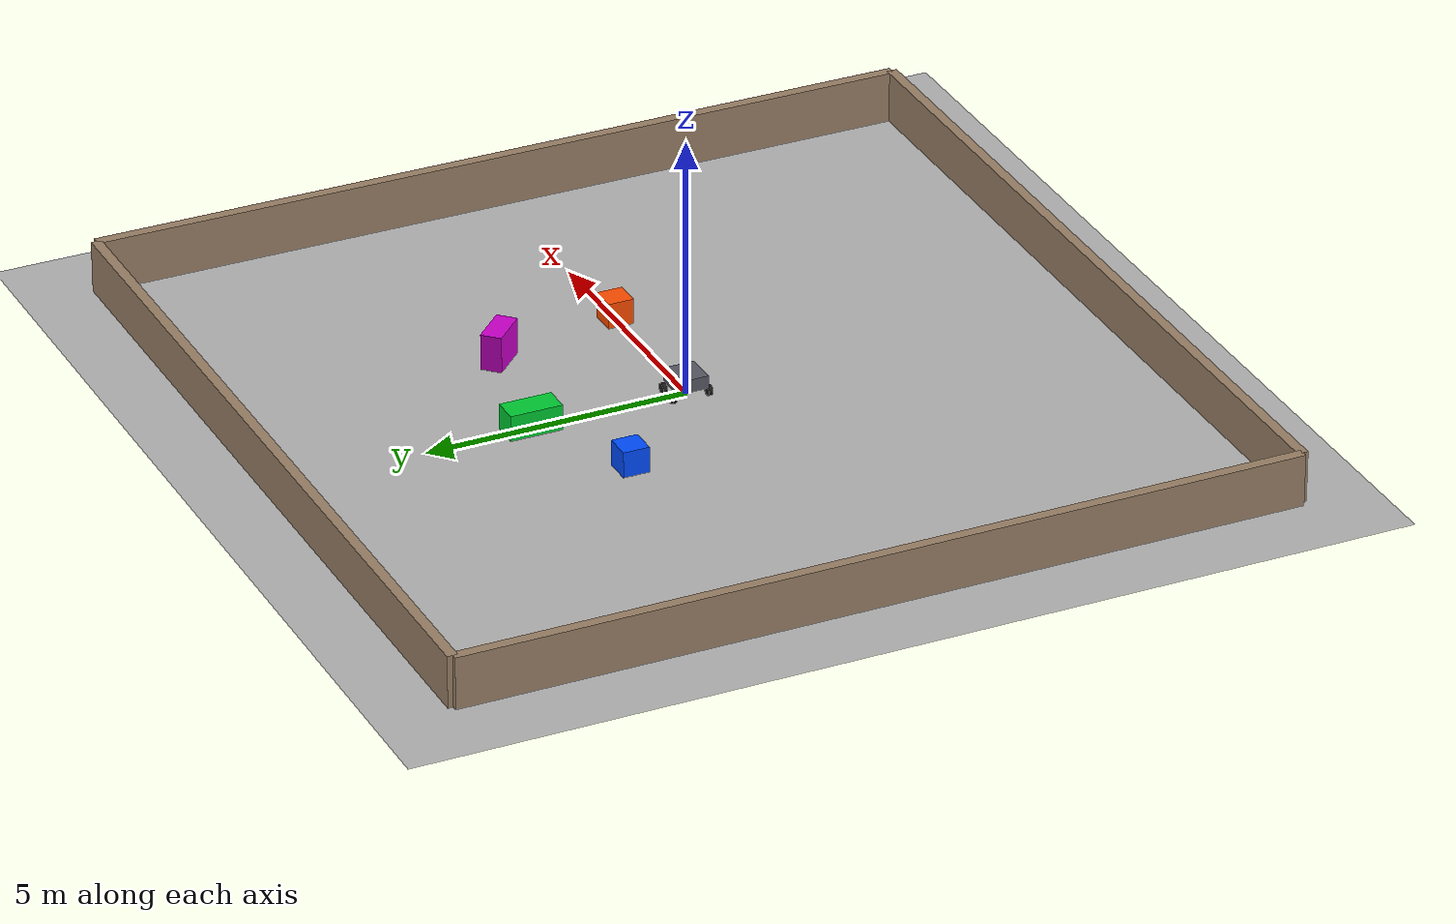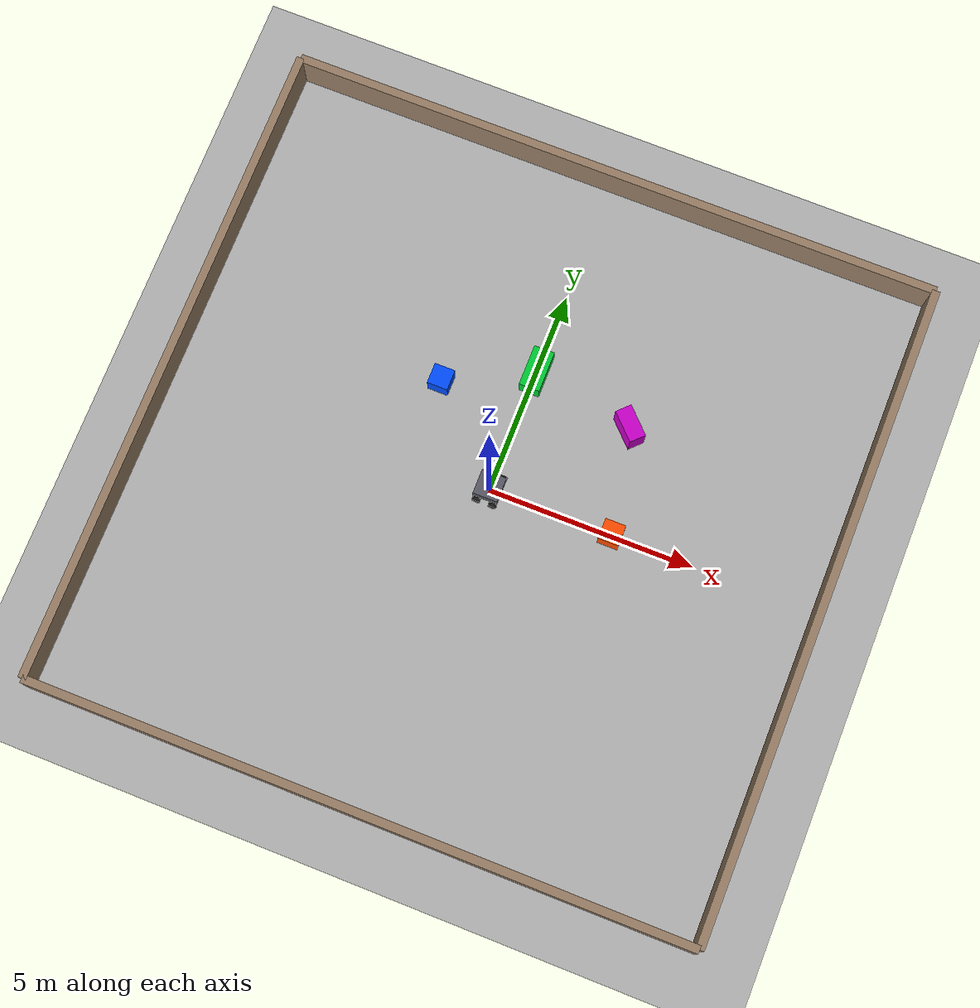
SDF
<?xml version="1.0" ?>
<sdf version="1.10">
  <world name="rassor_world">

    <!-- ================================================================
         WORLD PLUGINS
         ================================================================ -->
    <plugin filename="gz-sim-physics-system"
            name="gz::sim::systems::Physics"/>
    <plugin filename="gz-sim-user-commands-system"
            name="gz::sim::systems::UserCommands"/>
    <plugin filename="gz-sim-scene-broadcaster-system"
            name="gz::sim::systems::SceneBroadcaster"/>
    <plugin filename="gz-sim-sensors-system"
            name="gz::sim::systems::Sensors">
      <render_engine>ogre2</render_engine>
    </plugin>

    <physics name="default_physics" type="ode">
      <max_step_size>0.001</max_step_size>
      <real_time_factor>1.0</real_time_factor>
    </physics>

    <!-- ================================================================
         LIGHTING
         ================================================================ -->
    <light name="sun" type="directional">
      <cast_shadows>true</cast_shadows>
      <pose>0 0 10 0 0 0</pose>
      <diffuse>0.9 0.9 0.9 1</diffuse>
      <specular>0.3 0.3 0.3 1</specular>
      <direction>-0.5 0.1 -0.9</direction>
      <attenuation>
        <range>1000</range>
        <constant>0.9</constant>
        <linear>0.01</linear>
        <quadratic>0.001</quadratic>
      </attenuation>
    </light>

    <!-- ================================================================
         GROUND PLANE
         ================================================================ -->
    <model name="ground_plane">
      <static>true</static>
      <link name="link">
        <collision name="collision">
          <geometry>
            <plane><normal>0 0 1</normal><size>50 50</size></plane>
          </geometry>
          <surface>
            <friction>
              <ode><mu>1.0</mu><mu2>1.0</mu2></ode>
            </friction>
          </surface>
        </collision>
        <visual name="visual">
          <geometry>
            <plane><normal>0 0 1</normal><size>50 50</size></plane>
          </geometry>
          <material>
            <ambient>0.7 0.7 0.7 1</ambient>
            <diffuse>0.7 0.7 0.7 1</diffuse>
            <specular>0.01 0.01 0.01 1</specular>
          </material>
        </visual>
      </link>
    </model>

    <!-- ================================================================
         OBSTACLES
         ================================================================ -->
    <model name="obstacle_1">
      <static>true</static>
      <pose>3.0 0.0 0.25 0 0 0</pose>
      <link name="link">
        <collision name="col"><geometry><box><size>0.5 0.5 0.5</size></box></geometry></collision>
        <visual name="vis">
          <geometry><box><size>0.5 0.5 0.5</size></box></geometry>
          <material><ambient>1.0 0.3 0.0 1</ambient><diffuse>1.0 0.3 0.0 1</diffuse></material>
        </visual>
      </link>
    </model>

    <model name="obstacle_2">
      <static>true</static>
      <pose>-2.0 2.0 0.25 0 0 0</pose>
      <link name="link">
        <collision name="col"><geometry><box><size>0.5 0.5 0.5</size></box></geometry></collision>
        <visual name="vis">
          <geometry><box><size>0.5 0.5 0.5</size></box></geometry>
          <material><ambient>0.0 0.3 1.0 1</ambient><diffuse>0.0 0.3 1.0 1</diffuse></material>
        </visual>
      </link>
    </model>

    <model name="obstacle_3">
      <static>true</static>
      <pose>0.0 3.0 0.25 0 0 0</pose>
      <link name="link">
        <collision name="col"><geometry><box><size>0.5 1.0 0.5</size></box></geometry></collision>
        <visual name="vis">
          <geometry><box><size>0.5 1.0 0.5</size></box></geometry>
          <material><ambient>0.0 0.8 0.2 1</ambient><diffuse>0.0 0.8 0.2 1</diffuse></material>
        </visual>
      </link>
    </model>

    <model name="obstacle_4">
      <static>true</static>
      <pose>2.5 2.5 0.35 0 0 0.785</pose>
      <link name="link">
        <collision name="col"><geometry><box><size>0.4 0.8 0.7</size></box></geometry></collision>
        <visual name="vis">
          <geometry><box><size>0.4 0.8 0.7</size></box></geometry>
          <material><ambient>0.8 0.0 0.8 1</ambient><diffuse>0.8 0.0 0.8 1</diffuse></material>
        </visual>
      </link>
    </model>
    <!-- AFTER obstacle_4, BEFORE the rassor model, ADD these 4 walls: -->

    <model name="wall_north">
      <static>true</static>
      <pose>0.0 8.0 0.5 0 0 0</pose>
      <link name="link">
        <collision name="col"><geometry><box><size>16.0 0.2 1.0</size></box></geometry></collision>
        <visual name="vis">
          <geometry><box><size>16.0 0.2 1.0</size></box></geometry>
          <material><ambient>0.6 0.5 0.4 1</ambient><diffuse>0.6 0.5 0.4 1</diffuse></material>
        </visual>
      </link>
    </model>

    <model name="wall_south">
      <static>true</static>
      <pose>0.0 -8.0 0.5 0 0 0</pose>
      <link name="link">
        <collision name="col"><geometry><box><size>16.0 0.2 1.0</size></box></geometry></collision>
        <visual name="vis">
          <geometry><box><size>16.0 0.2 1.0</size></box></geometry>
          <material><ambient>0.6 0.5 0.4 1</ambient><diffuse>0.6 0.5 0.4 1</diffuse></material>
        </visual>
      </link>
    </model>

    <model name="wall_east">
      <static>true</static>
      <pose>8.0 0.0 0.5 0 0 0</pose>
      <link name="link">
        <collision name="col"><geometry><box><size>0.2 16.0 1.0</size></box></geometry></collision>
        <visual name="vis">
          <geometry><box><size>0.2 16.0 1.0</size></box></geometry>
          <material><ambient>0.6 0.5 0.4 1</ambient><diffuse>0.6 0.5 0.4 1</diffuse></material>
        </visual>
      </link>
    </model>

    <model name="wall_west">
      <static>true</static>
      <pose>-8.0 0.0 0.5 0 0 0</pose>
      <link name="link">
        <collision name="col"><geometry><box><size>0.2 16.0 1.0</size></box></geometry></collision>
        <visual name="vis">
          <geometry><box><size>0.2 16.0 1.0</size></box></geometry>
          <material><ambient>0.6 0.5 0.4 1</ambient><diffuse>0.6 0.5 0.4 1</diffuse></material>
        </visual>
      </link>
    </model>

    <model name="rassor">
      <pose>0 0 0 0 0 0</pose>

      <!-- ── base_footprint (ground reference, massless) ── -->
      <link name="base_footprint">
        <pose>0 0 0 0 0 0</pose>
        <inertial>
          <mass>0.001</mass>
          <inertia>
            <ixx>1e-6</ixx><ixy>0</ixy><ixz>0</ixz>
            <iyy>1e-6</iyy><iyz>0</iyz><izz>1e-6</izz>
          </inertia>
        </inertial>
      </link>

      <!-- ── base_link (main body) ── -->
      <link name="base_link">
        <pose>0 0 0.325 0 0 0</pose>
        <inertial>
          <mass>15.0</mass>
          <inertia>
            <ixx>0.4922</ixx><ixy>0</ixy><ixz>0</ixz>
            <iyy>0.4922</iyy><iyz>0</iyz><izz>0.9000</izz>
          </inertia>
        </inertial>
        <collision name="base_col">
          <geometry><box><size>0.6 0.6 0.25</size></box></geometry>
        </collision>
        <visual name="base_vis">
          <geometry><box><size>0.6 0.6 0.25</size></box></geometry>
          <material>
            <ambient>0.35 0.35 0.40 1</ambient>
            <diffuse>0.35 0.35 0.40 1</diffuse>
            <specular>0.1 0.1 0.1 1</specular>
          </material>
        </visual>
      </link>

      <joint name="base_footprint_joint" type="fixed">
        <parent>base_footprint</parent>
        <child>base_link</child>
      </joint>

      <!-- Front-Left wheel -->
      <link name="front_left_wheel">
        <pose>0.20 0.35 0.10 -1.5707963 0 0</pose>
        <inertial>
          <mass>1.5</mass>
          <inertia>
            <ixx>0.0075</ixx><ixy>0</ixy><ixz>0</ixz>
            <iyy>0.0075</iyy><iyz>0</iyz><izz>0.0075</izz>
          </inertia>
        </inertial>
        <collision name="col">
          <geometry><cylinder><radius>0.10</radius><length>0.08</length></cylinder></geometry>
          <surface><friction><ode><mu>2.0</mu><mu2>2.0</mu2></ode></friction></surface>
        </collision>
        <visual name="vis">
          <geometry><cylinder><radius>0.10</radius><length>0.08</length></cylinder></geometry>
          <material><ambient>0.1 0.1 0.1 1</ambient><diffuse>0.1 0.1 0.1 1</diffuse></material>
        </visual>
      </link>
      <joint name="front_left_wheel_joint" type="revolute">
        <parent>base_link</parent>
        <child>front_left_wheel</child>
        <axis>
          <xyz expressed_in="__model__">0 1 0</xyz>
          <dynamics><damping>0.05</damping><friction>0.05</friction></dynamics>
          <limit><lower>-1e16</lower><upper>1e16</upper></limit>
        </axis>
      </joint>

      <!-- Front-Right wheel -->
      <link name="front_right_wheel">
        <pose>0.20 -0.35 0.10 -1.5707963 0 0</pose>
        <inertial>
          <mass>1.5</mass>
          <inertia>
            <ixx>0.0075</ixx><ixy>0</ixy><ixz>0</ixz>
            <iyy>0.0075</iyy><iyz>0</iyz><izz>0.0075</izz>
          </inertia>
        </inertial>
        <collision name="col">
          <geometry><cylinder><radius>0.10</radius><length>0.08</length></cylinder></geometry>
          <surface><friction><ode><mu>2.0</mu><mu2>2.0</mu2></ode></friction></surface>
        </collision>
        <visual name="vis">
          <geometry><cylinder><radius>0.10</radius><length>0.08</length></cylinder></geometry>
          <material><ambient>0.1 0.1 0.1 1</ambient><diffuse>0.1 0.1 0.1 1</diffuse></material>
        </visual>
      </link>
      <joint name="front_right_wheel_joint" type="revolute">
        <parent>base_link</parent>
        <child>front_right_wheel</child>
        <axis>
          <xyz expressed_in="__model__">0 1 0</xyz>
          <dynamics><damping>0.05</damping><friction>0.05</friction></dynamics>
          <limit><lower>-1e16</lower><upper>1e16</upper></limit>
        </axis>
      </joint>

      <!-- Rear-Left wheel -->
      <link name="rear_left_wheel">
        <pose>-0.20 0.35 0.10 -1.5707963 0 0</pose>
        <inertial>
          <mass>1.5</mass>
          <inertia>
            <ixx>0.0075</ixx><ixy>0</ixy><ixz>0</ixz>
            <iyy>0.0075</iyy><iyz>0</iyz><izz>0.0075</izz>
          </inertia>
        </inertial>
        <collision name="col">
          <geometry><cylinder><radius>0.10</radius><length>0.08</length></cylinder></geometry>
          <surface><friction><ode><mu>2.0</mu><mu2>2.0</mu2></ode></friction></surface>
        </collision>
        <visual name="vis">
          <geometry><cylinder><radius>0.10</radius><length>0.08</length></cylinder></geometry>
          <material><ambient>0.1 0.1 0.1 1</ambient><diffuse>0.1 0.1 0.1 1</diffuse></material>
        </visual>
      </link>
      <joint name="rear_left_wheel_joint" type="revolute">
        <parent>base_link</parent>
        <child>rear_left_wheel</child>
        <axis>
          <xyz expressed_in="__model__">0 1 0</xyz>
          <dynamics><damping>0.05</damping><friction>0.05</friction></dynamics>
          <limit><lower>-1e16</lower><upper>1e16</upper></limit>
        </axis>
      </joint>

      <!-- Rear-Right wheel -->
      <link name="rear_right_wheel">
        <pose>-0.20 -0.35 0.10 -1.5707963 0 0</pose>
        <inertial>
          <mass>1.5</mass>
          <inertia>
            <ixx>0.0075</ixx><ixy>0</ixy><ixz>0</ixz>
            <iyy>0.0075</iyy><iyz>0</iyz><izz>0.0075</izz>
          </inertia>
        </inertial>
        <collision name="col">
          <geometry><cylinder><radius>0.10</radius><length>0.08</length></cylinder></geometry>
          <surface><friction><ode><mu>2.0</mu><mu2>2.0</mu2></ode></friction></surface>
        </collision>
        <visual name="vis">
          <geometry><cylinder><radius>0.10</radius><length>0.08</length></cylinder></geometry>
          <material><ambient>0.1 0.1 0.1 1</ambient><diffuse>0.1 0.1 0.1 1</diffuse></material>
        </visual>
      </link>
      <joint name="rear_right_wheel_joint" type="revolute">
        <parent>base_link</parent>
        <child>rear_right_wheel</child>
        <axis>
          <xyz expressed_in="__model__">0 1 0</xyz>
          <dynamics><damping>0.05</damping><friction>0.05</friction></dynamics>
          <limit><lower>-1e16</lower><upper>1e16</upper></limit>
        </axis>
      </joint>

      <!-- ── Camera link — on top, centred, facing forward ── -->
      <link name="camera_link">
        <pose>0.0 0 0.52 0 0 0</pose>
        <inertial>
          <mass>0.15</mass>
          <inertia>
            <ixx>1e-4</ixx><ixy>0</ixy><ixz>0</ixz>
            <iyy>1e-4</iyy><iyz>0</iyz><izz>1e-4</izz>
          </inertia>
        </inertial>
        <visual name="vis">
          <!-- Astra-like housing: 0.165 wide × 0.030 tall × 0.025 deep -->
          <geometry><box><size>0.025 0.165 0.030</size></box></geometry>
          <material>
            <ambient>0.05 0.05 0.05 1</ambient>
            <diffuse>0.05 0.05 0.05 1</diffuse>
          </material>
        </visual>

        <!-- ── RGBD Camera Sensor ── -->
        <sensor name="rgbd_camera" type="rgbd_camera">
          <camera>
            <horizontal_fov>1.04719755</horizontal_fov>
            <image>
              <width>640</width>
              <height>480</height>
              <format>R8G8B8</format>
            </image>
            <clip>
              <near>0.10</near>
              <far>8.00</far>
            </clip>
            <noise>
              <type>gaussian</type>
              <mean>0.0</mean>
              <stddev>0.005</stddev>
            </noise>
            <lens>
              <intrinsics>
                <fx>554.25</fx>
                <fy>554.25</fy>
                <cx>320.5</cx>
                <cy>240.5</cy>
                <s>0</s>
              </intrinsics>
            </lens>
          </camera>
          <always_on>true</always_on>
          <update_rate>15</update_rate>
          <visualize>false</visualize>
          <topic>/camera</topic>
        </sensor>
      </link>

      <joint name="camera_joint" type="fixed">
        <parent>base_link</parent>
        <child>camera_link</child>
      </joint>

      <!-- ================================================================
           MODEL PLUGINS
           ================================================================ -->

      <plugin filename="gz-sim-diff-drive-system"
              name="gz::sim::systems::DiffDrive">
        <left_joint>front_left_wheel_joint</left_joint>
        <left_joint>rear_left_wheel_joint</left_joint>
        <right_joint>front_right_wheel_joint</right_joint>
        <right_joint>rear_right_wheel_joint</right_joint>
        <wheel_separation>0.70</wheel_separation>
        <wheel_radius>0.10</wheel_radius>
        <odom_publish_frequency>30</odom_publish_frequency>
        <topic>/cmd_vel</topic>
        <odom_topic>/odometry/gz_wheel</odom_topic>
        <tf_topic>/tf_gz_unused</tf_topic>
        <publish_tf>false</publish_tf>
        <frame_id>odom</frame_id>
        <child_frame_id>base_footprint</child_frame_id>
        <min_velocity>-0.30</min_velocity>
        <max_velocity>0.30</max_velocity>
        <min_acceleration>-1.0</min_acceleration>
        <max_acceleration>1.0</max_acceleration>
      </plugin>

      <plugin filename="gz-sim-joint-state-publisher-system"
              name="gz::sim::systems::JointStatePublisher">
        <topic>/joint_states</topic>
        <joint_name>front_left_wheel_joint</joint_name>
        <joint_name>front_right_wheel_joint</joint_name>
        <joint_name>rear_left_wheel_joint</joint_name>
        <joint_name>rear_right_wheel_joint</joint_name>
      </plugin>

    </model><!-- end rassor -->

  </world>
</sdf>
